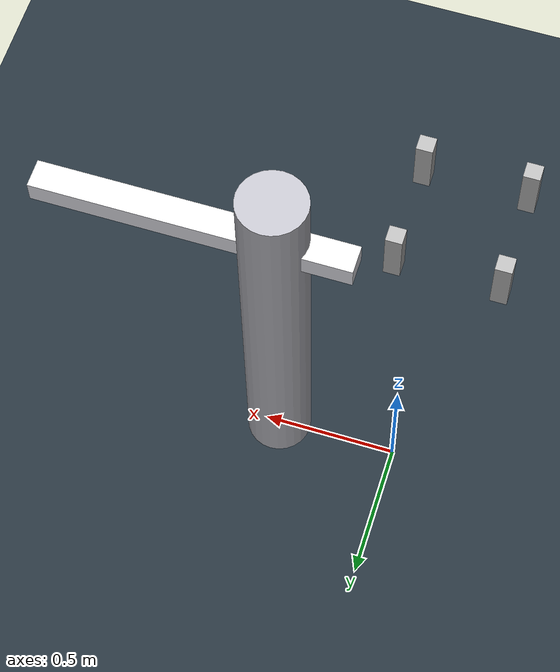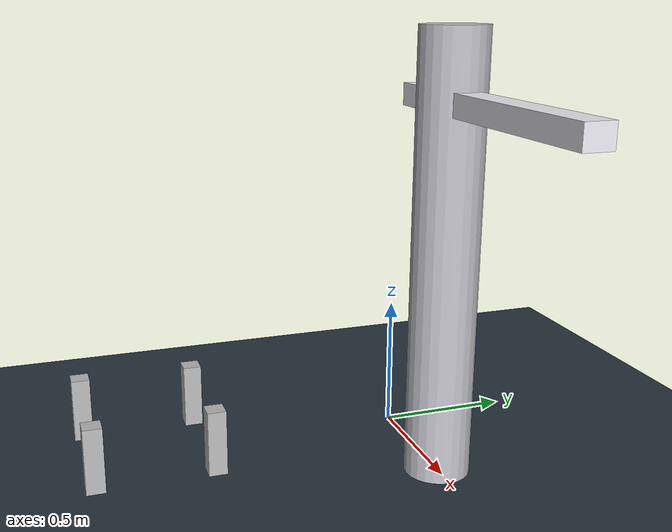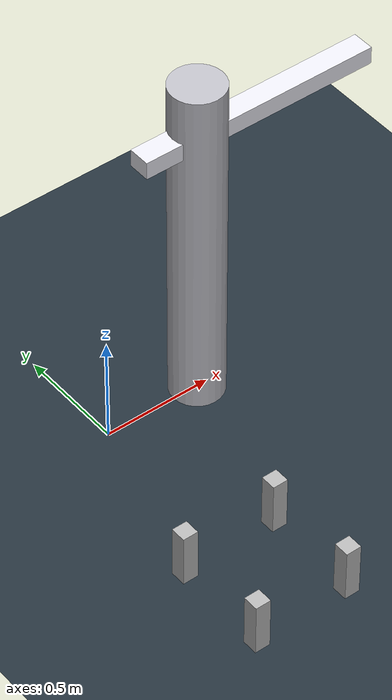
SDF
<?xml version="1.0" ?>
<sdf version="1.6">
  <world name="offshore_wind_turbine">

    <!-- Publish exact Gazebo model/link poses for the V9.2 dynamic TF bridge. -->
    <plugin name="gazebo_ros_state" filename="libgazebo_ros_state.so">
      <ros>
        <namespace>/gazebo</namespace>
      </ros>
      <update_rate>30.0</update_rate>
    </plugin>

    <!-- HaiYing V8.1: 3 m/s常风 + 300~330 s附加9 m/s阵风 -->
    <plugin name="haiying_wind_plugin"
            filename="libgazebo_wind_plugin.so">
      <frameId>base_link</frameId>
      <robotNamespace/>
      <publishRate>2.0</publishRate>

      <windVelocityMean>3.0</windVelocityMean>
      <windVelocityMax>3.0</windVelocityMax>
      <windVelocityVariance>0</windVelocityVariance>
      <windDirectionMean>0 1 0</windDirectionMean>
      <windDirectionVariance>0</windDirectionVariance>

      <windGustStart>300</windGustStart>
      <windGustDuration>30</windGustDuration>
      <windGustVelocityMean>9.0</windGustVelocityMean>
      <windGustVelocityMax>9.0</windGustVelocityMax>
      <windGustVelocityVariance>0</windGustVelocityVariance>
      <windGustDirectionMean>0 1 0</windGustDirectionMean>
      <windGustDirectionVariance>0</windGustDirectionVariance>

      <windPubTopic>world_wind</windPubTopic>
    </plugin>

    <gravity>0 0 -9.81</gravity>
    <physics type="ode">
      <max_step_size>0.001</max_step_size>
      <real_time_update_rate>1000</real_time_update_rate>
      <ode><solver><type>quick</type><iters>50</iters></solver><constraints><cfm>0.000001</cfm><erp>0.2</erp></constraints></ode>
    </physics>
    <!-- 自包含地面与光源：避免 model:// 下载阻塞离线实验室环境。 -->
    <light name="sun" type="directional"><cast_shadows>true</cast_shadows><pose>0 0 10 0 0 0</pose><diffuse>0.8 0.8 0.8 1</diffuse><specular>0.2 0.2 0.2 1</specular><attenuation><range>1000</range><constant>0.9</constant><linear>0.01</linear><quadratic>0.001</quadratic></attenuation><direction>-0.5 0.1 -0.9</direction></light>
    <model name="ground_plane"><static>true</static><link name="link"><collision name="collision"><geometry><plane><normal>0 0 1</normal><size>20 20</size></plane></geometry></collision><visual name="visual"><geometry><plane><normal>0 0 1</normal><size>20 20</size></plane></geometry><material><ambient>0.15 0.20 0.24 1</ambient></material></visual></link></model>

    <!-- 可碰撞的简化塔筒与叶片；其 MoveIt 对应物由 wind_turbine_scene.py 发布。 -->
    <model name="turbine_tower"><static>true</static><pose>0.45 0 0.8 0 0 0</pose><link name="link"><collision name="collision"><geometry><cylinder><radius>0.12</radius><length>1.6</length></cylinder></geometry></collision><visual name="visual"><geometry><cylinder><radius>0.12</radius><length>1.6</length></cylinder></geometry><material><ambient>0.75 0.75 0.78 1</ambient></material></visual></link></model>
    <model name="turbine_blade"><static>true</static><pose>0.72 0 1.35 0 0 0</pose><link name="link"><collision name="collision"><geometry><box><size>1.1 0.10 0.08</size></box></geometry></collision><visual name="visual"><geometry><box><size>1.1 0.10 0.08</size></box></geometry><material><ambient>0.92 0.92 0.95 1</ambient></material></visual></link></model>

    <!-- HAIYING_TEMP_TAKEOFF_STAND -->
    <!-- Stand center: x=0, y=-1.0 -->

    <model name="takeoff_stand_fl">
      <static>true</static>
      <pose>0.22 -0.78 0.125 0 0 0</pose>
      <link name="link">
        <collision name="collision">
          <geometry>
            <box><size>0.07 0.07 0.25</size></box>
          </geometry>
        </collision>
        <visual name="visual">
          <geometry>
            <box><size>0.07 0.07 0.25</size></box>
          </geometry>
        </visual>
      </link>
    </model>

    <model name="takeoff_stand_fr">
      <static>true</static>
      <pose>0.22 -1.22 0.125 0 0 0</pose>
      <link name="link">
        <collision name="collision">
          <geometry>
            <box><size>0.07 0.07 0.25</size></box>
          </geometry>
        </collision>
        <visual name="visual">
          <geometry>
            <box><size>0.07 0.07 0.25</size></box>
          </geometry>
        </visual>
      </link>
    </model>

    <model name="takeoff_stand_bl">
      <static>true</static>
      <pose>-0.22 -0.78 0.125 0 0 0</pose>
      <link name="link">
        <collision name="collision">
          <geometry>
            <box><size>0.07 0.07 0.25</size></box>
          </geometry>
        </collision>
        <visual name="visual">
          <geometry>
            <box><size>0.07 0.07 0.25</size></box>
          </geometry>
        </visual>
      </link>
    </model>

    <model name="takeoff_stand_br">
      <static>true</static>
      <pose>-0.22 -1.22 0.125 0 0 0</pose>
      <link name="link">
        <collision name="collision">
          <geometry>
            <box><size>0.07 0.07 0.25</size></box>
          </geometry>
        </collision>
        <visual name="visual">
          <geometry>
            <box><size>0.07 0.07 0.25</size></box>
          </geometry>
        </visual>
      </link>
    </model>

  </world>
</sdf>
